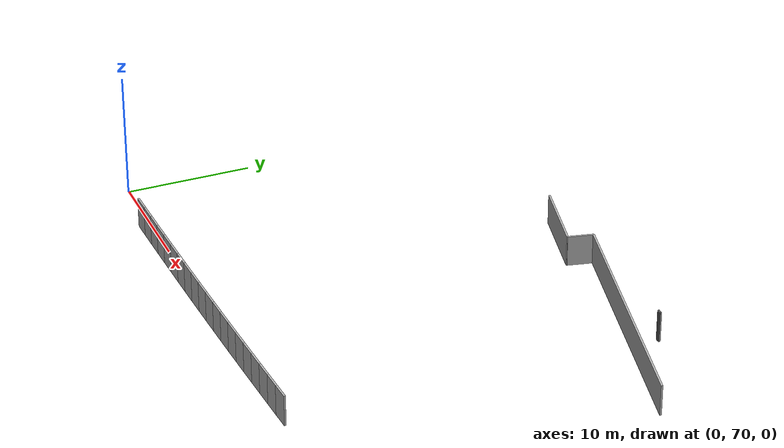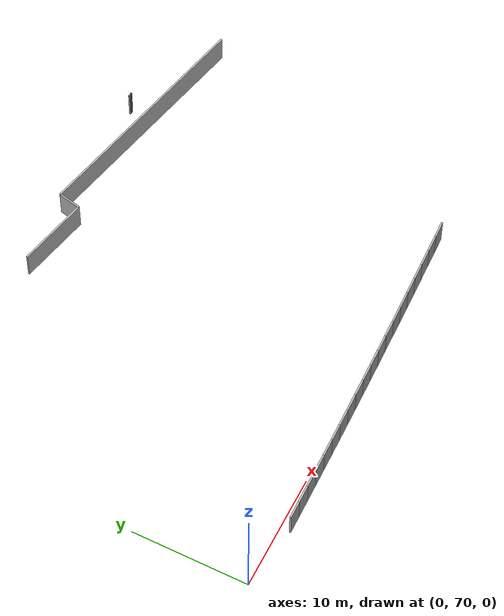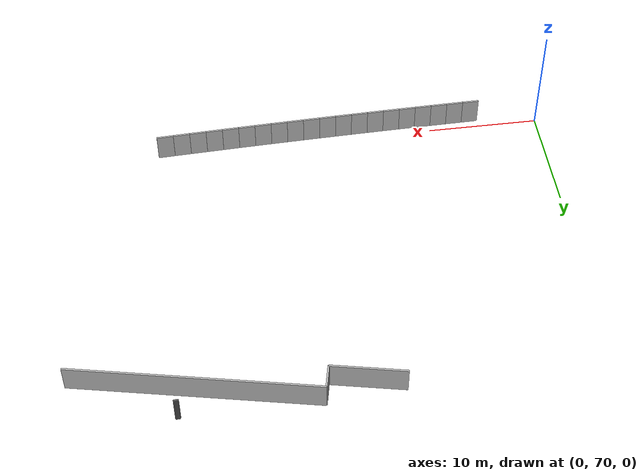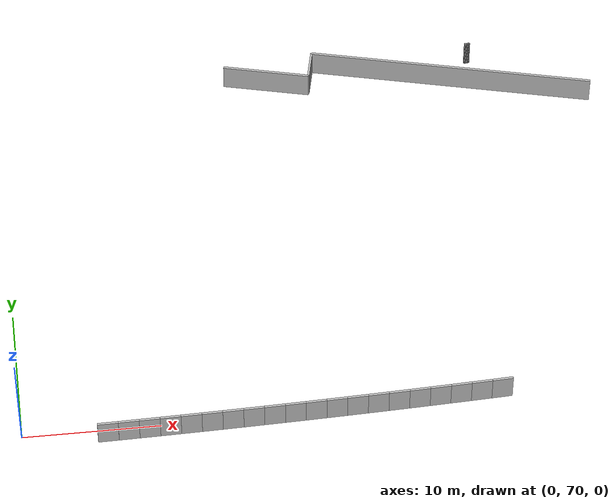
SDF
<sdf version="1.6">
 <model name="sps_1301">
  <static>1</static>
  <allow_auto_disable>0</allow_auto_disable>
  <link name="Wall988">
   <collision name="collision"><geometry><box><size>20.9004 0.15 2.5</size></box></geometry></collision>
   <visual name="visual">
    <geometry><box><size>20.9004 0.15 2.5</size></box></geometry>
    <transparency>0.0</transparency>
   </visual>
   <pose>33.8982 97.0791 1.25 0 -0 2.92735</pose>
  </link>
  <link name="Wall989">
   <collision name="collision"><geometry><box><size>2.01466 0.15 2.5</size></box></geometry></collision>
   <visual name="visual">
    <geometry><box><size>2.01466 0.15 2.5</size></box></geometry>
    <transparency>0.0</transparency>
   </visual>
   <pose>23.4727 98.3166 1.25 0 0 -1.78498</pose>
  </link>
  <link name="Wall990">
   <collision name="collision"><geometry><box><size>6.36018 0.15 2.5</size></box></geometry></collision>
   <visual name="visual">
    <geometry><box><size>6.36018 0.15 2.5</size></box></geometry>
    <transparency>0.0</transparency>
   </visual>
   <pose>20.1512 98.0084 1.25 0 -0 2.92736</pose>
  </link>
  <link name="Wall2408">
   <collision name="collision"><geometry><box><size>0.0454525 0.15 2.5</size></box></geometry></collision>
   <visual name="visual">
    <geometry><box><size>0.0454525 0.15 2.5</size></box></geometry>
    <transparency>0.0</transparency>
   </visual>
   <pose>35.5271 99.0552 1.25 0 0 -2.74887</pose>
  </link>
  <link name="Wall2409">
   <collision name="collision"><geometry><box><size>0.0453057 0.15 2.5</size></box></geometry></collision>
   <visual name="visual">
    <geometry><box><size>0.0453057 0.15 2.5</size></box></geometry>
    <transparency>0.0</transparency>
   </visual>
   <pose>35.4845 99.0397 1.25 0 0 -2.83646</pose>
  </link>
  <link name="Wall2410">
   <collision name="collision"><geometry><box><size>0.0454476 0.15 2.5</size></box></geometry></collision>
   <visual name="visual">
    <geometry><box><size>0.0454476 0.15 2.5</size></box></geometry>
    <transparency>0.0</transparency>
   </visual>
   <pose>35.4407 99.028 1.25 0 0 -2.92365</pose>
  </link>
  <link name="Wall2411">
   <collision name="collision"><geometry><box><size>0.0454156 0.15 2.5</size></box></geometry></collision>
   <visual name="visual">
    <geometry><box><size>0.0454156 0.15 2.5</size></box></geometry>
    <transparency>0.0</transparency>
   </visual>
   <pose>35.396 99.0202 1.25 0 0 -3.01357</pose>
  </link>
  <link name="Wall2412">
   <collision name="collision"><geometry><box><size>0.0452109 0.15 2.5</size></box></geometry></collision>
   <visual name="visual">
    <geometry><box><size>0.0452109 0.15 2.5</size></box></geometry>
    <transparency>0.0</transparency>
   </visual>
   <pose>35.3509 99.0163 1.25 0 0 -3.09703</pose>
  </link>
  <link name="Wall2413">
   <collision name="collision"><geometry><box><size>0.0454548 0.15 2.5</size></box></geometry></collision>
   <visual name="visual">
    <geometry><box><size>0.0454548 0.15 2.5</size></box></geometry>
    <transparency>0.0</transparency>
   </visual>
   <pose>35.3056 99.0163 1.25 0 -0 3.09727</pose>
  </link>
  <link name="Wall2414">
   <collision name="collision"><geometry><box><size>0.0453788 0.15 2.5</size></box></geometry></collision>
   <visual name="visual">
    <geometry><box><size>0.0453788 0.15 2.5</size></box></geometry>
    <transparency>0.0</transparency>
   </visual>
   <pose>35.2604 99.0203 1.25 0 -0 3.0094</pose>
  </link>
  <link name="Wall2415">
   <collision name="collision"><geometry><box><size>0.0453285 0.15 2.5</size></box></geometry></collision>
   <visual name="visual">
    <geometry><box><size>0.0453285 0.15 2.5</size></box></geometry>
    <transparency>0.0</transparency>
   </visual>
   <pose>35.2158 99.0282 1.25 0 -0 2.92307</pose>
  </link>
  <link name="Wall2416">
   <collision name="collision"><geometry><box><size>0.0454804 0.15 2.5</size></box></geometry></collision>
   <visual name="visual">
    <geometry><box><size>0.0454804 0.15 2.5</size></box></geometry>
    <transparency>0.0</transparency>
   </visual>
   <pose>35.1719 99.0399 1.25 0 -0 2.83767</pose>
  </link>
  <link name="Wall3715">
   <collision name="collision"><geometry><box><size>1.49636 0.15 2.5</size></box></geometry></collision>
   <visual name="visual">
    <geometry><box><size>1.49636 0.15 2.5</size></box></geometry>
    <transparency>0.0</transparency>
   </visual>
   <pose>6.17376 69.1798 1.25 0 -0 0.0166835</pose>
  </link>
  <link name="Wall3716">
   <collision name="collision"><geometry><box><size>1.49647 0.15 2.5</size></box></geometry></collision>
   <visual name="visual">
    <geometry><box><size>1.49647 0.15 2.5</size></box></geometry>
    <transparency>0.0</transparency>
   </visual>
   <pose>7.66994 69.2061 1.25 0 -0 0.0184364</pose>
  </link>
  <link name="Wall3717">
   <collision name="collision"><geometry><box><size>1.49651 0.15 2.5</size></box></geometry></collision>
   <visual name="visual">
    <geometry><box><size>1.49651 0.15 2.5</size></box></geometry>
    <transparency>0.0</transparency>
   </visual>
   <pose>9.16616 69.2348 1.25 0 -0 0.0199451</pose>
  </link>
  <link name="Wall3718">
   <collision name="collision"><geometry><box><size>1.49656 0.15 2.5</size></box></geometry></collision>
   <visual name="visual">
    <geometry><box><size>1.49656 0.15 2.5</size></box></geometry>
    <transparency>0.0</transparency>
   </visual>
   <pose>10.6624 69.2658 1.25 0 -0 0.0214946</pose>
  </link>
  <link name="Wall3719">
   <collision name="collision"><geometry><box><size>1.49655 0.15 2.5</size></box></geometry></collision>
   <visual name="visual">
    <geometry><box><size>1.49655 0.15 2.5</size></box></geometry>
    <transparency>0.0</transparency>
   </visual>
   <pose>12.1586 69.2992 1.25 0 -0 0.0231265</pose>
  </link>
  <link name="Wall3720">
   <collision name="collision"><geometry><box><size>1.49649 0.15 2.5</size></box></geometry></collision>
   <visual name="visual">
    <geometry><box><size>1.49649 0.15 2.5</size></box></geometry>
    <transparency>0.0</transparency>
   </visual>
   <pose>13.6547 69.335 1.25 0 -0 0.0247186</pose>
  </link>
  <link name="Wall3721">
   <collision name="collision"><geometry><box><size>1.49649 0.15 2.5</size></box></geometry></collision>
   <visual name="visual">
    <geometry><box><size>1.49649 0.15 2.5</size></box></geometry>
    <transparency>0.0</transparency>
   </visual>
   <pose>15.1507 69.3731 1.25 0 -0 0.0262282</pose>
  </link>
  <link name="Wall3722">
   <collision name="collision"><geometry><box><size>1.49661 0.15 2.5</size></box></geometry></collision>
   <visual name="visual">
    <geometry><box><size>1.49661 0.15 2.5</size></box></geometry>
    <transparency>0.0</transparency>
   </visual>
   <pose>16.6467 69.4135 1.25 0 -0 0.0277763</pose>
  </link>
  <link name="Wall3723">
   <collision name="collision"><geometry><box><size>1.49662 0.15 2.5</size></box></geometry></collision>
   <visual name="visual">
    <geometry><box><size>1.49662 0.15 2.5</size></box></geometry>
    <transparency>0.0</transparency>
   </visual>
   <pose>18.1427 69.4564 1.25 0 -0 0.0295304</pose>
  </link>
  <link name="Wall3724">
   <collision name="collision"><geometry><box><size>1.49651 0.15 2.5</size></box></geometry></collision>
   <visual name="visual">
    <geometry><box><size>1.49651 0.15 2.5</size></box></geometry>
    <transparency>0.0</transparency>
   </visual>
   <pose>19.6385 69.5017 1.25 0 -0 0.0310424</pose>
  </link>
  <link name="Wall3725">
   <collision name="collision"><geometry><box><size>1.49641 0.15 2.5</size></box></geometry></collision>
   <visual name="visual">
    <geometry><box><size>1.49641 0.15 2.5</size></box></geometry>
    <transparency>0.0</transparency>
   </visual>
   <pose>21.1342 69.5494 1.25 0 -0 0.0327177</pose>
  </link>
  <link name="Wall3726">
   <collision name="collision"><geometry><box><size>1.49666 0.15 2.5</size></box></geometry></collision>
   <visual name="visual">
    <geometry><box><size>1.49666 0.15 2.5</size></box></geometry>
    <transparency>0.0</transparency>
   </visual>
   <pose>22.6299 69.5995 1.25 0 -0 0.0342218</pose>
  </link>
  <link name="Wall3727">
   <collision name="collision"><geometry><box><size>1.49656 0.15 2.5</size></box></geometry></collision>
   <visual name="visual">
    <geometry><box><size>1.49656 0.15 2.5</size></box></geometry>
    <transparency>0.0</transparency>
   </visual>
   <pose>24.1256 69.6518 1.25 0 -0 0.0356933</pose>
  </link>
  <link name="Wall3728">
   <collision name="collision"><geometry><box><size>1.49665 0.15 2.5</size></box></geometry></collision>
   <visual name="visual">
    <geometry><box><size>1.49665 0.15 2.5</size></box></geometry>
    <transparency>0.0</transparency>
   </visual>
   <pose>25.6212 69.7065 1.25 0 -0 0.0374458</pose>
  </link>
  <link name="Wall3729">
   <collision name="collision"><geometry><box><size>1.49637 0.15 2.5</size></box></geometry></collision>
   <visual name="visual">
    <geometry><box><size>1.49637 0.15 2.5</size></box></geometry>
    <transparency>0.0</transparency>
   </visual>
   <pose>27.1167 69.7636 1.25 0 -0 0.0388815</pose>
  </link>
  <link name="Wall3730">
   <collision name="collision"><geometry><box><size>1.4966 0.15 2.5</size></box></geometry></collision>
   <visual name="visual">
    <geometry><box><size>1.4966 0.15 2.5</size></box></geometry>
    <transparency>0.0</transparency>
   </visual>
   <pose>28.612 69.8231 1.25 0 -0 0.0406307</pose>
  </link>
  <link name="Wall3731">
   <collision name="collision"><geometry><box><size>1.49657 0.15 2.5</size></box></geometry></collision>
   <visual name="visual">
    <geometry><box><size>1.49657 0.15 2.5</size></box></geometry>
    <transparency>0.0</transparency>
   </visual>
   <pose>30.1073 69.885 1.25 0 -0 0.0421417</pose>
  </link>
  <link name="Wall3732">
   <collision name="collision"><geometry><box><size>1.49642 0.15 2.5</size></box></geometry></collision>
   <visual name="visual">
    <geometry><box><size>1.49642 0.15 2.5</size></box></geometry>
    <transparency>0.0</transparency>
   </visual>
   <pose>31.6024 69.9492 1.25 0 -0 0.0436972</pose>
  </link>
  <link name="Wall3733">
   <collision name="collision"><geometry><box><size>1.49653 0.15 2.5</size></box></geometry></collision>
   <visual name="visual">
    <geometry><box><size>1.49653 0.15 2.5</size></box></geometry>
    <transparency>0.0</transparency>
   </visual>
   <pose>33.0974 70.0158 1.25 0 -0 0.045327</pose>
  </link>
  <link name="Wall3734">
   <collision name="collision"><geometry><box><size>1.49663 0.15 2.5</size></box></geometry></collision>
   <visual name="visual">
    <geometry><box><size>1.49663 0.15 2.5</size></box></geometry>
    <transparency>0.0</transparency>
   </visual>
   <pose>34.5924 70.0847 1.25 0 -0 0.0467936</pose>
  </link>
 </model>
</sdf>
